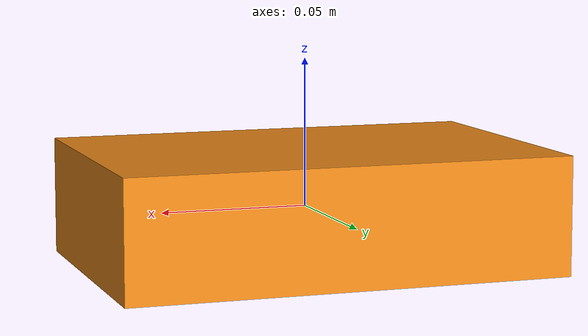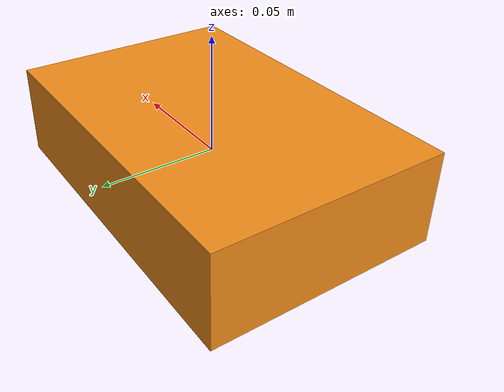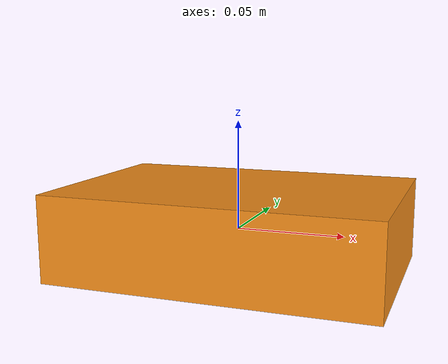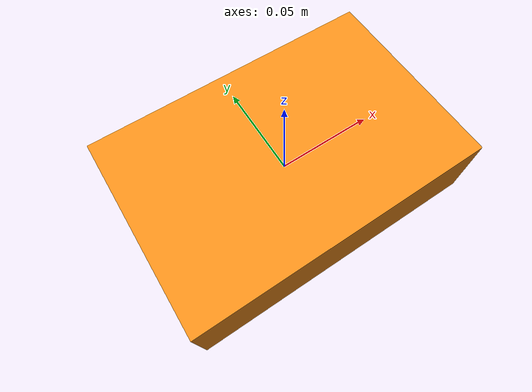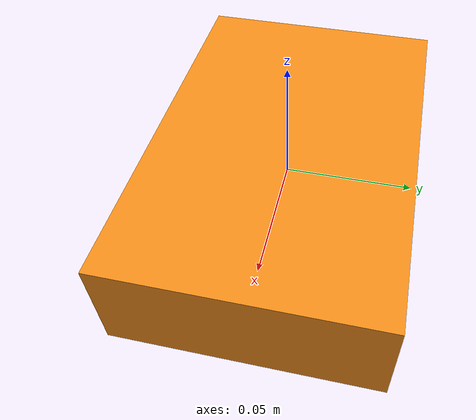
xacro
<?xml version="1.0"?>
<robot xmlns:xacro="http://ros.org/wiki/xacro">
    <xacro:property name="chassis_length" value="0.15"/>
    <xacro:property name="chassis_width" value="0.10"/>
    <xacro:property name="chassis_height" value="0.04"/>

    <!-- Define the robot base -->
    <link name="base_link"></link>

    <!-- Define the robot -->
    <link name="robot_link">
        <visual>
            <origin xyz="0 0 0"/>
            <geometry>
                <box size="${chassis_length} ${chassis_width} ${chassis_height}"/>
            </geometry>
            <material name="orange"/>
        </visual>
    </link>

    <!-- Connect the robot to the base -->
    <joint name="robot_joint" type="fixed">
        <origin xyz="0 0 0" rpy="0 0 0" />
        <parent link="base_link" />
        <child link="robot_link" />
    </joint>
</robot>
